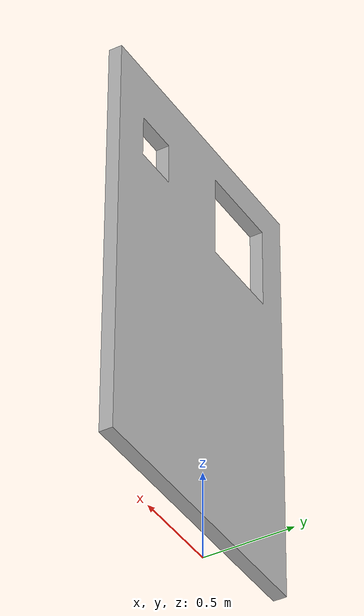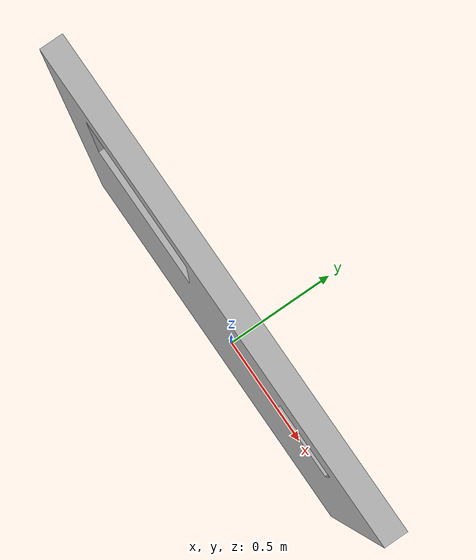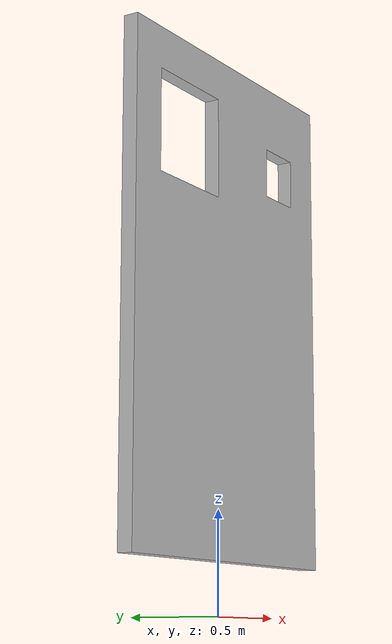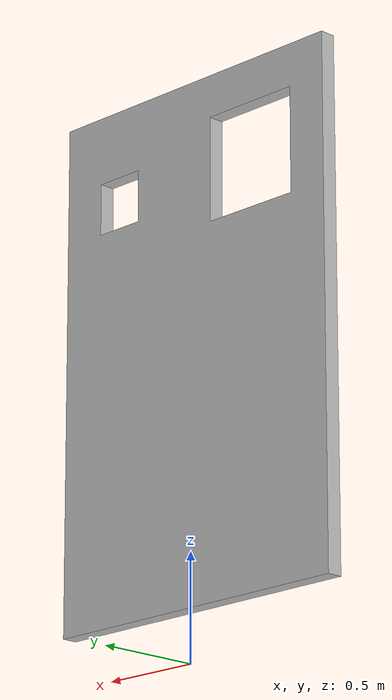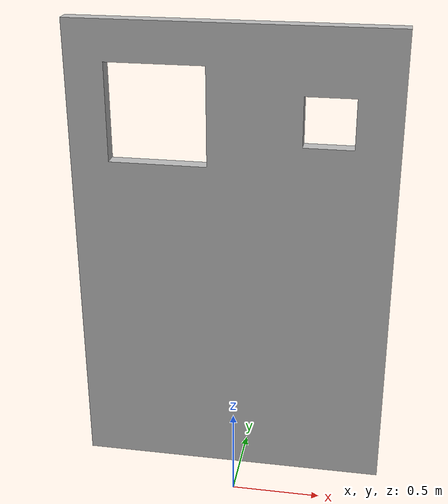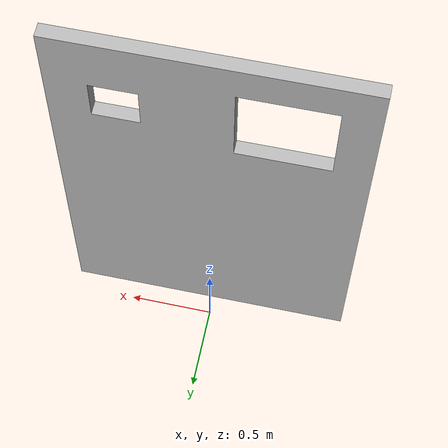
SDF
<?xml version="1.0"?>
<sdf version="1.5">
  <model name="detect_deliver">
    <static>true</static>
    <pose>0 0 0.25 0 0 0</pose>
    <link name="link">
      <collision name="collision">
        <pose>0 0 0 1.5707963267949 0 0</pose>
        <geometry>
          <mesh>
            <uri>file://dd_deliver/mesh/detect_deliver.STL</uri>
          </mesh>
        </geometry>
      </collision>
      <visual name="visual">
        <pose>0 0 0 1.5707963267949 0 0</pose>
        <geometry>
          <mesh>
            <uri>file://dd_deliver/mesh/detect_deliver.STL</uri>
          </mesh>
        </geometry>
      </visual>
    </link>
  </model>
</sdf>
